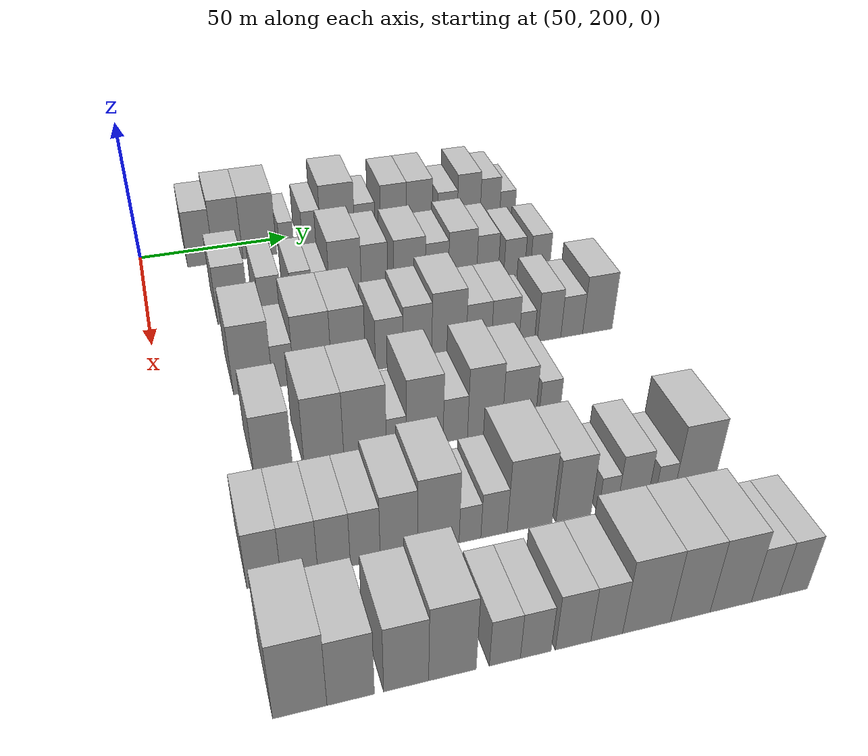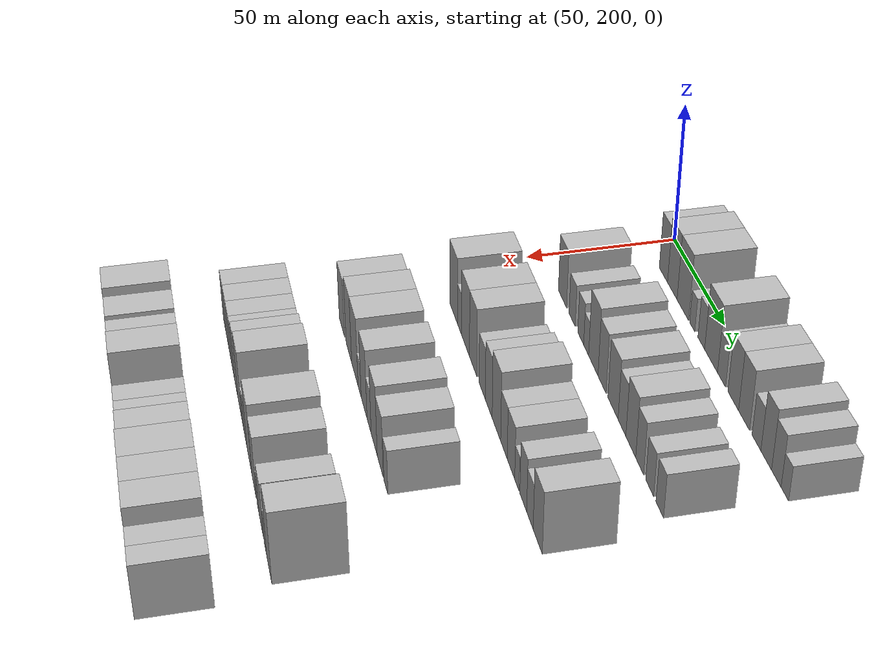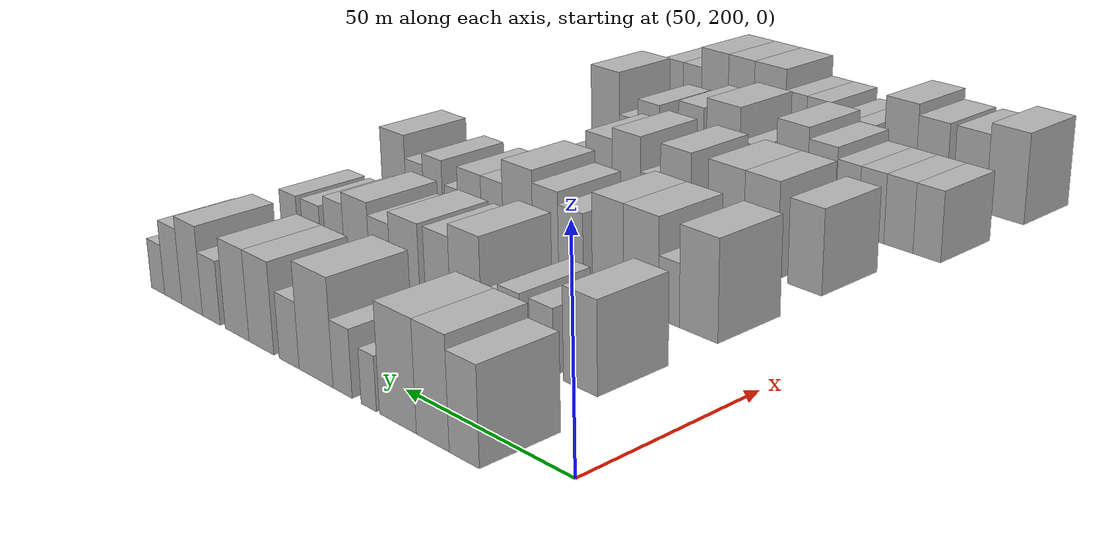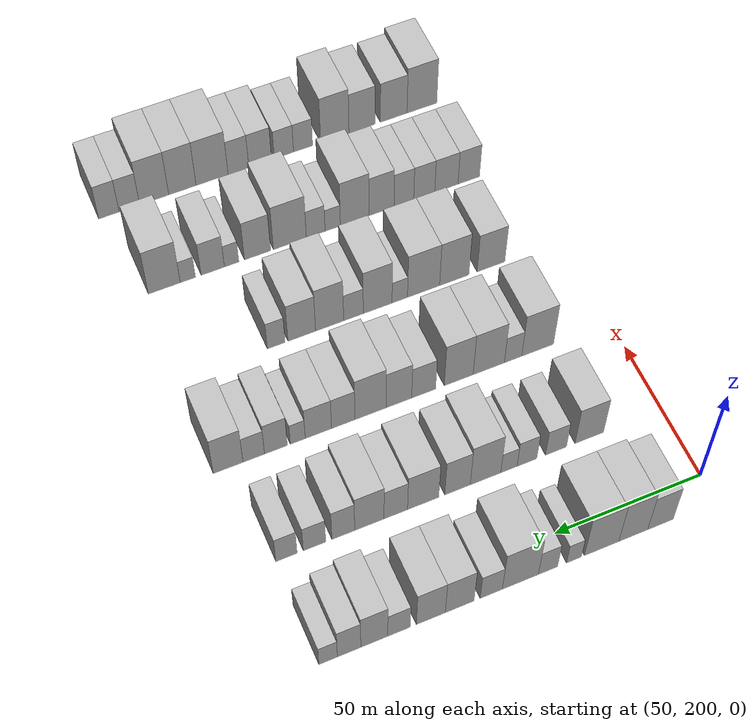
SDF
<sdf version="1.6">
 <world name="default">
  <model name="building_90">
   <static>1</static>
   <pose>50.0000 219.2931 0 0.000000 0.000000 0.000000</pose>
   <link name="link">
    <pose>0 0 10.50 0 0 0</pose>
    <collision name="collision"><geometry><box><size>20.0000 8.7649 21.0000</size></box></geometry></collision>
    <visual name="visual">
     <cast_shadows>0</cast_shadows>
     <geometry><box><size>20.0000 8.7649 21.0000</size></box></geometry>
     <material>
      <script>
       <uri>model://HANNAS_wall/materials/scripts</uri>
       <uri>model://HANNAS_wall/materials/textures</uri>
       <name>vrc/HANNAS_wall</name>
      </script>
     </material>
    </visual>
   </link>
  </model>
  <model name="building_91">
   <static>1</static>
   <pose>50.0000 228.6174 0 0.000000 0.000000 0.000000</pose>
   <link name="link">
    <pose>0 0 12.00 0 0 0</pose>
    <collision name="collision"><geometry><box><size>20.0000 9.8837 24.0000</size></box></geometry></collision>
    <visual name="visual">
     <cast_shadows>0</cast_shadows>
     <geometry><box><size>20.0000 9.8837 24.0000</size></box></geometry>
     <material>
      <script>
       <uri>model://HANNAS_wall/materials/scripts</uri>
       <uri>model://HANNAS_wall/materials/textures</uri>
       <name>vrc/HANNAS_wall</name>
      </script>
     </material>
    </visual>
   </link>
  </model>
  <model name="building_92">
   <static>1</static>
   <pose>50.0000 239.3772 0 0.000000 0.000000 0.000000</pose>
   <link name="link">
    <pose>0 0 12.00 0 0 0</pose>
    <collision name="collision"><geometry><box><size>20.0000 11.6358 24.0000</size></box></geometry></collision>
    <visual name="visual">
     <cast_shadows>0</cast_shadows>
     <geometry><box><size>20.0000 11.6358 24.0000</size></box></geometry>
     <material>
      <script>
       <uri>model://HANNAS_wall/materials/scripts</uri>
       <uri>model://HANNAS_wall/materials/textures</uri>
       <name>vrc/HANNAS_wall</name>
      </script>
     </material>
    </visual>
   </link>
  </model>
  <model name="building_93">
   <static>1</static>
   <pose>50.0000 248.6963 0 0.000000 0.000000 0.000000</pose>
   <link name="link">
    <pose>0 0 6.00 0 0 0</pose>
    <collision name="collision"><geometry><box><size>20.0000 5.0024 12.0000</size></box></geometry></collision>
    <visual name="visual">
     <cast_shadows>0</cast_shadows>
     <geometry><box><size>20.0000 5.0024 12.0000</size></box></geometry>
     <material>
      <script>
       <uri>model://HANNAS_wall/materials/scripts</uri>
       <uri>model://HANNAS_wall/materials/textures</uri>
       <name>vrc/HANNAS_wall</name>
      </script>
     </material>
    </visual>
   </link>
  </model>
  <model name="building_94">
   <static>1</static>
   <pose>50.0000 257.4159 0 0.000000 0.000000 0.000000</pose>
   <link name="link">
    <pose>0 0 7.50 0 0 0</pose>
    <collision name="collision"><geometry><box><size>20.0000 6.4369 15.0000</size></box></geometry></collision>
    <visual name="visual">
     <cast_shadows>0</cast_shadows>
     <geometry><box><size>20.0000 6.4369 15.0000</size></box></geometry>
     <material>
      <script>
       <uri>model://HANNAS_wall/materials/scripts</uri>
       <uri>model://HANNAS_wall/materials/textures</uri>
       <name>vrc/HANNAS_wall</name>
      </script>
     </material>
    </visual>
   </link>
  </model>
  <model name="building_95">
   <static>1</static>
   <pose>50.0000 266.6008 0 0.000000 0.000000 0.000000</pose>
   <link name="link">
    <pose>0 0 12.00 0 0 0</pose>
    <collision name="collision"><geometry><box><size>20.0000 11.9327 24.0000</size></box></geometry></collision>
    <visual name="visual">
     <cast_shadows>0</cast_shadows>
     <geometry><box><size>20.0000 11.9327 24.0000</size></box></geometry>
     <material>
      <script>
       <uri>model://HANNAS_wall/materials/scripts</uri>
       <uri>model://HANNAS_wall/materials/textures</uri>
       <name>vrc/HANNAS_wall</name>
      </script>
     </material>
    </visual>
   </link>
  </model>
  <model name="building_96">
   <static>1</static>
   <pose>50.0000 276.2049 0 0.000000 0.000000 0.000000</pose>
   <link name="link">
    <pose>0 0 7.50 0 0 0</pose>
    <collision name="collision"><geometry><box><size>20.0000 7.2756 15.0000</size></box></geometry></collision>
    <visual name="visual">
     <cast_shadows>0</cast_shadows>
     <geometry><box><size>20.0000 7.2756 15.0000</size></box></geometry>
     <material>
      <script>
       <uri>model://HANNAS_wall/materials/scripts</uri>
       <uri>model://HANNAS_wall/materials/textures</uri>
       <name>vrc/HANNAS_wall</name>
      </script>
     </material>
    </visual>
   </link>
  </model>
  <model name="building_97">
   <static>1</static>
   <pose>50.0000 286.5255 0 0.000000 0.000000 0.000000</pose>
   <link name="link">
    <pose>0 0 10.50 0 0 0</pose>
    <collision name="collision"><geometry><box><size>20.0000 9.3657 21.0000</size></box></geometry></collision>
    <visual name="visual">
     <cast_shadows>0</cast_shadows>
     <geometry><box><size>20.0000 9.3657 21.0000</size></box></geometry>
     <material>
      <script>
       <uri>model://HANNAS_wall/materials/scripts</uri>
       <uri>model://HANNAS_wall/materials/textures</uri>
       <name>vrc/HANNAS_wall</name>
      </script>
     </material>
    </visual>
   </link>
  </model>
  <model name="building_98">
   <static>1</static>
   <pose>50.0000 295.8890 0 0.000000 0.000000 0.000000</pose>
   <link name="link">
    <pose>0 0 10.50 0 0 0</pose>
    <collision name="collision"><geometry><box><size>20.0000 9.3614 21.0000</size></box></geometry></collision>
    <visual name="visual">
     <cast_shadows>0</cast_shadows>
     <geometry><box><size>20.0000 9.3614 21.0000</size></box></geometry>
     <material>
      <script>
       <uri>model://HANNAS_wall/materials/scripts</uri>
       <uri>model://HANNAS_wall/materials/textures</uri>
       <name>vrc/HANNAS_wall</name>
      </script>
     </material>
    </visual>
   </link>
  </model>
  <model name="building_99">
   <static>1</static>
   <pose>50.0000 306.1776 0 0.000000 0.000000 0.000000</pose>
   <link name="link">
    <pose>0 0 7.50 0 0 0</pose>
    <collision name="collision"><geometry><box><size>20.0000 7.2157 15.0000</size></box></geometry></collision>
    <visual name="visual">
     <cast_shadows>0</cast_shadows>
     <geometry><box><size>20.0000 7.2157 15.0000</size></box></geometry>
     <material>
      <script>
       <uri>model://HANNAS_wall/materials/scripts</uri>
       <uri>model://HANNAS_wall/materials/textures</uri>
       <name>vrc/HANNAS_wall</name>
      </script>
     </material>
    </visual>
   </link>
  </model>
  <model name="building_100">
   <static>1</static>
   <pose>50.0000 314.0619 0 0.000000 0.000000 0.000000</pose>
   <link name="link">
    <pose>0 0 10.50 0 0 0</pose>
    <collision name="collision"><geometry><box><size>20.0000 8.5529 21.0000</size></box></geometry></collision>
    <visual name="visual">
     <cast_shadows>0</cast_shadows>
     <geometry><box><size>20.0000 8.5529 21.0000</size></box></geometry>
     <material>
      <script>
       <uri>model://HANNAS_wall/materials/scripts</uri>
       <uri>model://HANNAS_wall/materials/textures</uri>
       <name>vrc/HANNAS_wall</name>
      </script>
     </material>
    </visual>
   </link>
  </model>
  <model name="building_101">
   <static>1</static>
   <pose>50.0000 322.0440 0 0.000000 0.000000 0.000000</pose>
   <link name="link">
    <pose>0 0 9.00 0 0 0</pose>
    <collision name="collision"><geometry><box><size>20.0000 7.4112 18.0000</size></box></geometry></collision>
    <visual name="visual">
     <cast_shadows>0</cast_shadows>
     <geometry><box><size>20.0000 7.4112 18.0000</size></box></geometry>
     <material>
      <script>
       <uri>model://HANNAS_wall/materials/scripts</uri>
       <uri>model://HANNAS_wall/materials/textures</uri>
       <name>vrc/HANNAS_wall</name>
      </script>
     </material>
    </visual>
   </link>
  </model>
  <model name="building_102">
   <static>1</static>
   <pose>50.0000 328.6626 0 0.000000 0.000000 0.000000</pose>
   <link name="link">
    <pose>0 0 6.00 0 0 0</pose>
    <collision name="collision"><geometry><box><size>20.0000 5.8260 12.0000</size></box></geometry></collision>
    <visual name="visual">
     <cast_shadows>0</cast_shadows>
     <geometry><box><size>20.0000 5.8260 12.0000</size></box></geometry>
     <material>
      <script>
       <uri>model://HANNAS_wall/materials/scripts</uri>
       <uri>model://HANNAS_wall/materials/textures</uri>
       <name>vrc/HANNAS_wall</name>
      </script>
     </material>
    </visual>
   </link>
  </model>
  <model name="building_214">
   <static>1</static>
   <pose>85.0000 225.6694 0 0.000000 0.000000 0.000000</pose>
   <link name="link">
    <pose>0 0 10.50 0 0 0</pose>
    <collision name="collision"><geometry><box><size>20.0000 9.9937 21.0000</size></box></geometry></collision>
    <visual name="visual">
     <cast_shadows>0</cast_shadows>
     <geometry><box><size>20.0000 9.9937 21.0000</size></box></geometry>
     <material>
      <script>
       <uri>model://HANNAS_wall/materials/scripts</uri>
       <uri>model://HANNAS_wall/materials/textures</uri>
       <name>vrc/HANNAS_wall</name>
      </script>
     </material>
    </visual>
   </link>
  </model>
  <model name="building_215">
   <static>1</static>
   <pose>85.0000 237.2993 0 0.000000 0.000000 0.000000</pose>
   <link name="link">
    <pose>0 0 7.50 0 0 0</pose>
    <collision name="collision"><geometry><box><size>20.0000 7.2660 15.0000</size></box></geometry></collision>
    <visual name="visual">
     <cast_shadows>0</cast_shadows>
     <geometry><box><size>20.0000 7.2660 15.0000</size></box></geometry>
     <material>
      <script>
       <uri>model://HANNAS_wall/materials/scripts</uri>
       <uri>model://HANNAS_wall/materials/textures</uri>
       <name>vrc/HANNAS_wall</name>
      </script>
     </material>
    </visual>
   </link>
  </model>
  <model name="building_216">
   <static>1</static>
   <pose>85.0000 247.3315 0 0.000000 0.000000 0.000000</pose>
   <link name="link">
    <pose>0 0 7.50 0 0 0</pose>
    <collision name="collision"><geometry><box><size>20.0000 6.7985 15.0000</size></box></geometry></collision>
    <visual name="visual">
     <cast_shadows>0</cast_shadows>
     <geometry><box><size>20.0000 6.7985 15.0000</size></box></geometry>
     <material>
      <script>
       <uri>model://HANNAS_wall/materials/scripts</uri>
       <uri>model://HANNAS_wall/materials/textures</uri>
       <name>vrc/HANNAS_wall</name>
      </script>
     </material>
    </visual>
   </link>
  </model>
  <model name="building_217">
   <static>1</static>
   <pose>85.0000 253.5375 0 0.000000 0.000000 0.000000</pose>
   <link name="link">
    <pose>0 0 6.00 0 0 0</pose>
    <collision name="collision"><geometry><box><size>20.0000 5.6137 12.0000</size></box></geometry></collision>
    <visual name="visual">
     <cast_shadows>0</cast_shadows>
     <geometry><box><size>20.0000 5.6137 12.0000</size></box></geometry>
     <material>
      <script>
       <uri>model://HANNAS_wall/materials/scripts</uri>
       <uri>model://HANNAS_wall/materials/textures</uri>
       <name>vrc/HANNAS_wall</name>
      </script>
     </material>
    </visual>
   </link>
  </model>
  <model name="building_218">
   <static>1</static>
   <pose>85.0000 261.5443 0 0.000000 0.000000 0.000000</pose>
   <link name="link">
    <pose>0 0 12.00 0 0 0</pose>
    <collision name="collision"><geometry><box><size>20.0000 10.3999 24.0000</size></box></geometry></collision>
    <visual name="visual">
     <cast_shadows>0</cast_shadows>
     <geometry><box><size>20.0000 10.3999 24.0000</size></box></geometry>
     <material>
      <script>
       <uri>model://HANNAS_wall/materials/scripts</uri>
       <uri>model://HANNAS_wall/materials/textures</uri>
       <name>vrc/HANNAS_wall</name>
      </script>
     </material>
    </visual>
   </link>
  </model>
  <model name="building_219">
   <static>1</static>
   <pose>85.0000 271.0660 0 0.000000 0.000000 0.000000</pose>
   <link name="link">
    <pose>0 0 10.50 0 0 0</pose>
    <collision name="collision"><geometry><box><size>20.0000 8.6435 21.0000</size></box></geometry></collision>
    <visual name="visual">
     <cast_shadows>0</cast_shadows>
     <geometry><box><size>20.0000 8.6435 21.0000</size></box></geometry>
     <material>
      <script>
       <uri>model://HANNAS_wall/materials/scripts</uri>
       <uri>model://HANNAS_wall/materials/textures</uri>
       <name>vrc/HANNAS_wall</name>
      </script>
     </material>
    </visual>
   </link>
  </model>
  <model name="building_220">
   <static>1</static>
   <pose>85.0000 282.6341 0 0.000000 0.000000 0.000000</pose>
   <link name="link">
    <pose>0 0 10.50 0 0 0</pose>
    <collision name="collision"><geometry><box><size>20.0000 10.4928 21.0000</size></box></geometry></collision>
    <visual name="visual">
     <cast_shadows>0</cast_shadows>
     <geometry><box><size>20.0000 10.4928 21.0000</size></box></geometry>
     <material>
      <script>
       <uri>model://HANNAS_wall/materials/scripts</uri>
       <uri>model://HANNAS_wall/materials/textures</uri>
       <name>vrc/HANNAS_wall</name>
      </script>
     </material>
    </visual>
   </link>
  </model>
  <model name="building_221">
   <static>1</static>
   <pose>85.0000 291.7943 0 0.000000 0.000000 0.000000</pose>
   <link name="link">
    <pose>0 0 9.00 0 0 0</pose>
    <collision name="collision"><geometry><box><size>20.0000 7.8276 18.0000</size></box></geometry></collision>
    <visual name="visual">
     <cast_shadows>0</cast_shadows>
     <geometry><box><size>20.0000 7.8276 18.0000</size></box></geometry>
     <material>
      <script>
       <uri>model://HANNAS_wall/materials/scripts</uri>
       <uri>model://HANNAS_wall/materials/textures</uri>
       <name>vrc/HANNAS_wall</name>
      </script>
     </material>
    </visual>
   </link>
  </model>
  <model name="building_222">
   <static>1</static>
   <pose>85.0000 300.5497 0 0.000000 0.000000 0.000000</pose>
   <link name="link">
    <pose>0 0 10.50 0 0 0</pose>
    <collision name="collision"><geometry><box><size>20.0000 9.6831 21.0000</size></box></geometry></collision>
    <visual name="visual">
     <cast_shadows>0</cast_shadows>
     <geometry><box><size>20.0000 9.6831 21.0000</size></box></geometry>
     <material>
      <script>
       <uri>model://HANNAS_wall/materials/scripts</uri>
       <uri>model://HANNAS_wall/materials/textures</uri>
       <name>vrc/HANNAS_wall</name>
      </script>
     </material>
    </visual>
   </link>
  </model>
  <model name="building_223">
   <static>1</static>
   <pose>85.0000 309.1389 0 0.000000 0.000000 0.000000</pose>
   <link name="link">
    <pose>0 0 9.00 0 0 0</pose>
    <collision name="collision"><geometry><box><size>20.0000 7.4954 18.0000</size></box></geometry></collision>
    <visual name="visual">
     <cast_shadows>0</cast_shadows>
     <geometry><box><size>20.0000 7.4954 18.0000</size></box></geometry>
     <material>
      <script>
       <uri>model://HANNAS_wall/materials/scripts</uri>
       <uri>model://HANNAS_wall/materials/textures</uri>
       <name>vrc/HANNAS_wall</name>
      </script>
     </material>
    </visual>
   </link>
  </model>
  <model name="building_224">
   <static>1</static>
   <pose>85.0000 318.5538 0 0.000000 0.000000 0.000000</pose>
   <link name="link">
    <pose>0 0 7.50 0 0 0</pose>
    <collision name="collision"><geometry><box><size>20.0000 7.3344 15.0000</size></box></geometry></collision>
    <visual name="visual">
     <cast_shadows>0</cast_shadows>
     <geometry><box><size>20.0000 7.3344 15.0000</size></box></geometry>
     <material>
      <script>
       <uri>model://HANNAS_wall/materials/scripts</uri>
       <uri>model://HANNAS_wall/materials/textures</uri>
       <name>vrc/HANNAS_wall</name>
      </script>
     </material>
    </visual>
   </link>
  </model>
  <model name="building_225">
   <static>1</static>
   <pose>85.0000 327.6606 0 0.000000 0.000000 0.000000</pose>
   <link name="link">
    <pose>0 0 7.50 0 0 0</pose>
    <collision name="collision"><geometry><box><size>20.0000 6.8792 15.0000</size></box></geometry></collision>
    <visual name="visual">
     <cast_shadows>0</cast_shadows>
     <geometry><box><size>20.0000 6.8792 15.0000</size></box></geometry>
     <material>
      <script>
       <uri>model://HANNAS_wall/materials/scripts</uri>
       <uri>model://HANNAS_wall/materials/textures</uri>
       <name>vrc/HANNAS_wall</name>
      </script>
     </material>
    </visual>
   </link>
  </model>
  <model name="building_324">
   <static>1</static>
   <pose>120.0000 226.4345 0 0.000000 0.000000 0.000000</pose>
   <link name="link">
    <pose>0 0 12.00 0 0 0</pose>
    <collision name="collision"><geometry><box><size>20.0000 11.3651 24.0000</size></box></geometry></collision>
    <visual name="visual">
     <cast_shadows>0</cast_shadows>
     <geometry><box><size>20.0000 11.3651 24.0000</size></box></geometry>
     <material>
      <script>
       <uri>model://HANNAS_wall/materials/scripts</uri>
       <uri>model://HANNAS_wall/materials/textures</uri>
       <name>vrc/HANNAS_wall</name>
      </script>
     </material>
    </visual>
   </link>
  </model>
  <model name="building_325">
   <static>1</static>
   <pose>120.0000 235.2301 0 0.000000 0.000000 0.000000</pose>
   <link name="link">
    <pose>0 0 7.50 0 0 0</pose>
    <collision name="collision"><geometry><box><size>20.0000 6.2260 15.0000</size></box></geometry></collision>
    <visual name="visual">
     <cast_shadows>0</cast_shadows>
     <geometry><box><size>20.0000 6.2260 15.0000</size></box></geometry>
     <material>
      <script>
       <uri>model://HANNAS_wall/materials/scripts</uri>
       <uri>model://HANNAS_wall/materials/textures</uri>
       <name>vrc/HANNAS_wall</name>
      </script>
     </material>
    </visual>
   </link>
  </model>
  <model name="building_326">
   <static>1</static>
   <pose>120.0000 243.8750 0 0.000000 0.000000 0.000000</pose>
   <link name="link">
    <pose>0 0 12.00 0 0 0</pose>
    <collision name="collision"><geometry><box><size>20.0000 11.0638 24.0000</size></box></geometry></collision>
    <visual name="visual">
     <cast_shadows>0</cast_shadows>
     <geometry><box><size>20.0000 11.0638 24.0000</size></box></geometry>
     <material>
      <script>
       <uri>model://HANNAS_wall/materials/scripts</uri>
       <uri>model://HANNAS_wall/materials/textures</uri>
       <name>vrc/HANNAS_wall</name>
      </script>
     </material>
    </visual>
   </link>
  </model>
  <model name="building_327">
   <static>1</static>
   <pose>120.0000 254.4738 0 0.000000 0.000000 0.000000</pose>
   <link name="link">
    <pose>0 0 12.00 0 0 0</pose>
    <collision name="collision"><geometry><box><size>20.0000 10.1339 24.0000</size></box></geometry></collision>
    <visual name="visual">
     <cast_shadows>0</cast_shadows>
     <geometry><box><size>20.0000 10.1339 24.0000</size></box></geometry>
     <material>
      <script>
       <uri>model://HANNAS_wall/materials/scripts</uri>
       <uri>model://HANNAS_wall/materials/textures</uri>
       <name>vrc/HANNAS_wall</name>
      </script>
     </material>
    </visual>
   </link>
  </model>
  <model name="building_328">
   <static>1</static>
   <pose>120.0000 266.7231 0 0.000000 0.000000 0.000000</pose>
   <link name="link">
    <pose>0 0 9.00 0 0 0</pose>
    <collision name="collision"><geometry><box><size>20.0000 8.3647 18.0000</size></box></geometry></collision>
    <visual name="visual">
     <cast_shadows>0</cast_shadows>
     <geometry><box><size>20.0000 8.3647 18.0000</size></box></geometry>
     <material>
      <script>
       <uri>model://HANNAS_wall/materials/scripts</uri>
       <uri>model://HANNAS_wall/materials/textures</uri>
       <name>vrc/HANNAS_wall</name>
      </script>
     </material>
    </visual>
   </link>
  </model>
  <model name="building_329">
   <static>1</static>
   <pose>120.0000 275.3216 0 0.000000 0.000000 0.000000</pose>
   <link name="link">
    <pose>0 0 10.50 0 0 0</pose>
    <collision name="collision"><geometry><box><size>20.0000 8.8323 21.0000</size></box></geometry></collision>
    <visual name="visual">
     <cast_shadows>0</cast_shadows>
     <geometry><box><size>20.0000 8.8323 21.0000</size></box></geometry>
     <material>
      <script>
       <uri>model://HANNAS_wall/materials/scripts</uri>
       <uri>model://HANNAS_wall/materials/textures</uri>
       <name>vrc/HANNAS_wall</name>
      </script>
     </material>
    </visual>
   </link>
  </model>
  <model name="building_330">
   <static>1</static>
   <pose>120.0000 285.0841 0 0.000000 0.000000 0.000000</pose>
   <link name="link">
    <pose>0 0 12.00 0 0 0</pose>
    <collision name="collision"><geometry><box><size>20.0000 10.6927 24.0000</size></box></geometry></collision>
    <visual name="visual">
     <cast_shadows>0</cast_shadows>
     <geometry><box><size>20.0000 10.6927 24.0000</size></box></geometry>
     <material>
      <script>
       <uri>model://HANNAS_wall/materials/scripts</uri>
       <uri>model://HANNAS_wall/materials/textures</uri>
       <name>vrc/HANNAS_wall</name>
      </script>
     </material>
    </visual>
   </link>
  </model>
  <model name="building_331">
   <static>1</static>
   <pose>120.0000 294.4161 0 0.000000 0.000000 0.000000</pose>
   <link name="link">
    <pose>0 0 9.00 0 0 0</pose>
    <collision name="collision"><geometry><box><size>20.0000 7.9714 18.0000</size></box></geometry></collision>
    <visual name="visual">
     <cast_shadows>0</cast_shadows>
     <geometry><box><size>20.0000 7.9714 18.0000</size></box></geometry>
     <material>
      <script>
       <uri>model://HANNAS_wall/materials/scripts</uri>
       <uri>model://HANNAS_wall/materials/textures</uri>
       <name>vrc/HANNAS_wall</name>
      </script>
     </material>
    </visual>
   </link>
  </model>
  <model name="building_332">
   <static>1</static>
   <pose>120.0000 302.8595 0 0.000000 0.000000 0.000000</pose>
   <link name="link">
    <pose>0 0 9.00 0 0 0</pose>
    <collision name="collision"><geometry><box><size>20.0000 8.9153 18.0000</size></box></geometry></collision>
    <visual name="visual">
     <cast_shadows>0</cast_shadows>
     <geometry><box><size>20.0000 8.9153 18.0000</size></box></geometry>
     <material>
      <script>
       <uri>model://HANNAS_wall/materials/scripts</uri>
       <uri>model://HANNAS_wall/materials/textures</uri>
       <name>vrc/HANNAS_wall</name>
      </script>
     </material>
    </visual>
   </link>
  </model>
  <model name="building_333">
   <static>1</static>
   <pose>120.0000 309.8301 0 0.000000 0.000000 0.000000</pose>
   <link name="link">
    <pose>0 0 6.00 0 0 0</pose>
    <collision name="collision"><geometry><box><size>20.0000 5.0261 12.0000</size></box></geometry></collision>
    <visual name="visual">
     <cast_shadows>0</cast_shadows>
     <geometry><box><size>20.0000 5.0261 12.0000</size></box></geometry>
     <material>
      <script>
       <uri>model://HANNAS_wall/materials/scripts</uri>
       <uri>model://HANNAS_wall/materials/textures</uri>
       <name>vrc/HANNAS_wall</name>
      </script>
     </material>
    </visual>
   </link>
  </model>
  <model name="building_334">
   <static>1</static>
   <pose>120.0000 317.1547 0 0.000000 0.000000 0.000000</pose>
   <link name="link">
    <pose>0 0 9.00 0 0 0</pose>
    <collision name="collision"><geometry><box><size>20.0000 7.6230 18.0000</size></box></geometry></collision>
    <visual name="visual">
     <cast_shadows>0</cast_shadows>
     <geometry><box><size>20.0000 7.6230 18.0000</size></box></geometry>
     <material>
      <script>
       <uri>model://HANNAS_wall/materials/scripts</uri>
       <uri>model://HANNAS_wall/materials/textures</uri>
       <name>vrc/HANNAS_wall</name>
      </script>
     </material>
    </visual>
   </link>
  </model>
  <model name="building_335">
   <static>1</static>
   <pose>120.0000 324.5552 0 0.000000 0.000000 0.000000</pose>
   <link name="link">
    <pose>0 0 7.50 0 0 0</pose>
    <collision name="collision"><geometry><box><size>20.0000 7.1780 15.0000</size></box></geometry></collision>
    <visual name="visual">
     <cast_shadows>0</cast_shadows>
     <geometry><box><size>20.0000 7.1780 15.0000</size></box></geometry>
     <material>
      <script>
       <uri>model://HANNAS_wall/materials/scripts</uri>
       <uri>model://HANNAS_wall/materials/textures</uri>
       <name>vrc/HANNAS_wall</name>
      </script>
     </material>
    </visual>
   </link>
  </model>
  <model name="building_336">
   <static>1</static>
   <pose>120.0000 333.0835 0 0.000000 0.000000 0.000000</pose>
   <link name="link">
    <pose>0 0 10.50 0 0 0</pose>
    <collision name="collision"><geometry><box><size>20.0000 9.8786 21.0000</size></box></geometry></collision>
    <visual name="visual">
     <cast_shadows>0</cast_shadows>
     <geometry><box><size>20.0000 9.8786 21.0000</size></box></geometry>
     <material>
      <script>
       <uri>model://HANNAS_wall/materials/scripts</uri>
       <uri>model://HANNAS_wall/materials/textures</uri>
       <name>vrc/HANNAS_wall</name>
      </script>
     </material>
    </visual>
   </link>
  </model>
  <model name="building_455">
   <static>1</static>
   <pose>155.0000 226.4869 0 0.000000 0.000000 0.000000</pose>
   <link name="link">
    <pose>0 0 10.50 0 0 0</pose>
    <collision name="collision"><geometry><box><size>20.0000 10.1524 21.0000</size></box></geometry></collision>
    <visual name="visual">
     <cast_shadows>0</cast_shadows>
     <geometry><box><size>20.0000 10.1524 21.0000</size></box></geometry>
     <material>
      <script>
       <uri>model://HANNAS_wall/materials/scripts</uri>
       <uri>model://HANNAS_wall/materials/textures</uri>
       <name>vrc/HANNAS_wall</name>
      </script>
     </material>
    </visual>
   </link>
  </model>
  <model name="building_456">
   <static>1</static>
   <pose>155.0000 239.8889 0 0.000000 0.000000 0.000000</pose>
   <link name="link">
    <pose>0 0 12.00 0 0 0</pose>
    <collision name="collision"><geometry><box><size>20.0000 10.6514 24.0000</size></box></geometry></collision>
    <visual name="visual">
     <cast_shadows>0</cast_shadows>
     <geometry><box><size>20.0000 10.6514 24.0000</size></box></geometry>
     <material>
      <script>
       <uri>model://HANNAS_wall/materials/scripts</uri>
       <uri>model://HANNAS_wall/materials/textures</uri>
       <name>vrc/HANNAS_wall</name>
      </script>
     </material>
    </visual>
   </link>
  </model>
  <model name="building_457">
   <static>1</static>
   <pose>155.0000 251.0143 0 0.000000 0.000000 0.000000</pose>
   <link name="link">
    <pose>0 0 12.00 0 0 0</pose>
    <collision name="collision"><geometry><box><size>20.0000 11.5995 24.0000</size></box></geometry></collision>
    <visual name="visual">
     <cast_shadows>0</cast_shadows>
     <geometry><box><size>20.0000 11.5995 24.0000</size></box></geometry>
     <material>
      <script>
       <uri>model://HANNAS_wall/materials/scripts</uri>
       <uri>model://HANNAS_wall/materials/textures</uri>
       <name>vrc/HANNAS_wall</name>
      </script>
     </material>
    </visual>
   </link>
  </model>
  <model name="building_458">
   <static>1</static>
   <pose>155.0000 259.5809 0 0.000000 0.000000 0.000000</pose>
   <link name="link">
    <pose>0 0 6.00 0 0 0</pose>
    <collision name="collision"><geometry><box><size>20.0000 5.5337 12.0000</size></box></geometry></collision>
    <visual name="visual">
     <cast_shadows>0</cast_shadows>
     <geometry><box><size>20.0000 5.5337 12.0000</size></box></geometry>
     <material>
      <script>
       <uri>model://HANNAS_wall/materials/scripts</uri>
       <uri>model://HANNAS_wall/materials/textures</uri>
       <name>vrc/HANNAS_wall</name>
      </script>
     </material>
    </visual>
   </link>
  </model>
  <model name="building_459">
   <static>1</static>
   <pose>155.0000 267.4757 0 0.000000 0.000000 0.000000</pose>
   <link name="link">
    <pose>0 0 12.00 0 0 0</pose>
    <collision name="collision"><geometry><box><size>20.0000 10.2559 24.0000</size></box></geometry></collision>
    <visual name="visual">
     <cast_shadows>0</cast_shadows>
     <geometry><box><size>20.0000 10.2559 24.0000</size></box></geometry>
     <material>
      <script>
       <uri>model://HANNAS_wall/materials/scripts</uri>
       <uri>model://HANNAS_wall/materials/textures</uri>
       <name>vrc/HANNAS_wall</name>
      </script>
     </material>
    </visual>
   </link>
  </model>
  <model name="building_460">
   <static>1</static>
   <pose>155.0000 276.0703 0 0.000000 0.000000 0.000000</pose>
   <link name="link">
    <pose>0 0 7.50 0 0 0</pose>
    <collision name="collision"><geometry><box><size>20.0000 6.9334 15.0000</size></box></geometry></collision>
    <visual name="visual">
     <cast_shadows>0</cast_shadows>
     <geometry><box><size>20.0000 6.9334 15.0000</size></box></geometry>
     <material>
      <script>
       <uri>model://HANNAS_wall/materials/scripts</uri>
       <uri>model://HANNAS_wall/materials/textures</uri>
       <name>vrc/HANNAS_wall</name>
      </script>
     </material>
    </visual>
   </link>
  </model>
  <model name="building_461">
   <static>1</static>
   <pose>155.0000 284.4874 0 0.000000 0.000000 0.000000</pose>
   <link name="link">
    <pose>0 0 12.00 0 0 0</pose>
    <collision name="collision"><geometry><box><size>20.0000 9.9008 24.0000</size></box></geometry></collision>
    <visual name="visual">
     <cast_shadows>0</cast_shadows>
     <geometry><box><size>20.0000 9.9008 24.0000</size></box></geometry>
     <material>
      <script>
       <uri>model://HANNAS_wall/materials/scripts</uri>
       <uri>model://HANNAS_wall/materials/textures</uri>
       <name>vrc/HANNAS_wall</name>
      </script>
     </material>
    </visual>
   </link>
  </model>
  <model name="building_462">
   <static>1</static>
   <pose>155.0000 294.2658 0 0.000000 0.000000 0.000000</pose>
   <link name="link">
    <pose>0 0 10.50 0 0 0</pose>
    <collision name="collision"><geometry><box><size>20.0000 9.6559 21.0000</size></box></geometry></collision>
    <visual name="visual">
     <cast_shadows>0</cast_shadows>
     <geometry><box><size>20.0000 9.6559 21.0000</size></box></geometry>
     <material>
      <script>
       <uri>model://HANNAS_wall/materials/scripts</uri>
       <uri>model://HANNAS_wall/materials/textures</uri>
       <name>vrc/HANNAS_wall</name>
      </script>
     </material>
    </visual>
   </link>
  </model>
  <model name="building_463">
   <static>1</static>
   <pose>155.0000 303.1693 0 0.000000 0.000000 0.000000</pose>
   <link name="link">
    <pose>0 0 7.50 0 0 0</pose>
    <collision name="collision"><geometry><box><size>20.0000 6.1513 15.0000</size></box></geometry></collision>
    <visual name="visual">
     <cast_shadows>0</cast_shadows>
     <geometry><box><size>20.0000 6.1513 15.0000</size></box></geometry>
     <material>
      <script>
       <uri>model://HANNAS_wall/materials/scripts</uri>
       <uri>model://HANNAS_wall/materials/textures</uri>
       <name>vrc/HANNAS_wall</name>
      </script>
     </material>
    </visual>
   </link>
  </model>
  <model name="building_569">
   <static>1</static>
   <pose>190.0000 218.2999 0 0.000000 0.000000 0.000000</pose>
   <link name="link">
    <pose>0 0 9.00 0 0 0</pose>
    <collision name="collision"><geometry><box><size>20.0000 8.0896 18.0000</size></box></geometry></collision>
    <visual name="visual">
     <cast_shadows>0</cast_shadows>
     <geometry><box><size>20.0000 8.0896 18.0000</size></box></geometry>
     <material>
      <script>
       <uri>model://HANNAS_wall/materials/scripts</uri>
       <uri>model://HANNAS_wall/materials/textures</uri>
       <name>vrc/HANNAS_wall</name>
      </script>
     </material>
    </visual>
   </link>
  </model>
  <model name="building_570">
   <static>1</static>
   <pose>190.0000 226.7125 0 0.000000 0.000000 0.000000</pose>
   <link name="link">
    <pose>0 0 9.00 0 0 0</pose>
    <collision name="collision"><geometry><box><size>20.0000 8.7356 18.0000</size></box></geometry></collision>
    <visual name="visual">
     <cast_shadows>0</cast_shadows>
     <geometry><box><size>20.0000 8.7356 18.0000</size></box></geometry>
     <material>
      <script>
       <uri>model://HANNAS_wall/materials/scripts</uri>
       <uri>model://HANNAS_wall/materials/textures</uri>
       <name>vrc/HANNAS_wall</name>
      </script>
     </material>
    </visual>
   </link>
  </model>
  <model name="building_571">
   <static>1</static>
   <pose>190.0000 235.0154 0 0.000000 0.000000 0.000000</pose>
   <link name="link">
    <pose>0 0 9.00 0 0 0</pose>
    <collision name="collision"><geometry><box><size>20.0000 7.8703 18.0000</size></box></geometry></collision>
    <visual name="visual">
     <cast_shadows>0</cast_shadows>
     <geometry><box><size>20.0000 7.8703 18.0000</size></box></geometry>
     <material>
      <script>
       <uri>model://HANNAS_wall/materials/scripts</uri>
       <uri>model://HANNAS_wall/materials/textures</uri>
       <name>vrc/HANNAS_wall</name>
      </script>
     </material>
    </visual>
   </link>
  </model>
  <model name="building_572">
   <static>1</static>
   <pose>190.0000 242.6029 0 0.000000 0.000000 0.000000</pose>
   <link name="link">
    <pose>0 0 9.00 0 0 0</pose>
    <collision name="collision"><geometry><box><size>20.0000 7.3047 18.0000</size></box></geometry></collision>
    <visual name="visual">
     <cast_shadows>0</cast_shadows>
     <geometry><box><size>20.0000 7.3047 18.0000</size></box></geometry>
     <material>
      <script>
       <uri>model://HANNAS_wall/materials/scripts</uri>
       <uri>model://HANNAS_wall/materials/textures</uri>
       <name>vrc/HANNAS_wall</name>
      </script>
     </material>
    </visual>
   </link>
  </model>
  <model name="building_573">
   <static>1</static>
   <pose>190.0000 250.8804 0 0.000000 0.000000 0.000000</pose>
   <link name="link">
    <pose>0 0 10.50 0 0 0</pose>
    <collision name="collision"><geometry><box><size>20.0000 9.2504 21.0000</size></box></geometry></collision>
    <visual name="visual">
     <cast_shadows>0</cast_shadows>
     <geometry><box><size>20.0000 9.2504 21.0000</size></box></geometry>
     <material>
      <script>
       <uri>model://HANNAS_wall/materials/scripts</uri>
       <uri>model://HANNAS_wall/materials/textures</uri>
       <name>vrc/HANNAS_wall</name>
      </script>
     </material>
    </visual>
   </link>
  </model>
  <model name="building_574">
   <static>1</static>
   <pose>190.0000 260.7575 0 0.000000 0.000000 0.000000</pose>
   <link name="link">
    <pose>0 0 12.00 0 0 0</pose>
    <collision name="collision"><geometry><box><size>20.0000 10.5037 24.0000</size></box></geometry></collision>
    <visual name="visual">
     <cast_shadows>0</cast_shadows>
     <geometry><box><size>20.0000 10.5037 24.0000</size></box></geometry>
     <material>
      <script>
       <uri>model://HANNAS_wall/materials/scripts</uri>
       <uri>model://HANNAS_wall/materials/textures</uri>
       <name>vrc/HANNAS_wall</name>
      </script>
     </material>
    </visual>
   </link>
  </model>
  <model name="building_575">
   <static>1</static>
   <pose>190.0000 268.8014 0 0.000000 0.000000 0.000000</pose>
   <link name="link">
    <pose>0 0 6.00 0 0 0</pose>
    <collision name="collision"><geometry><box><size>20.0000 5.5842 12.0000</size></box></geometry></collision>
    <visual name="visual">
     <cast_shadows>0</cast_shadows>
     <geometry><box><size>20.0000 5.5842 12.0000</size></box></geometry>
     <material>
      <script>
       <uri>model://HANNAS_wall/materials/scripts</uri>
       <uri>model://HANNAS_wall/materials/textures</uri>
       <name>vrc/HANNAS_wall</name>
      </script>
     </material>
    </visual>
   </link>
  </model>
  <model name="building_576">
   <static>1</static>
   <pose>190.0000 274.9888 0 0.000000 0.000000 0.000000</pose>
   <link name="link">
    <pose>0 0 7.50 0 0 0</pose>
    <collision name="collision"><geometry><box><size>20.0000 6.7907 15.0000</size></box></geometry></collision>
    <visual name="visual">
     <cast_shadows>0</cast_shadows>
     <geometry><box><size>20.0000 6.7907 15.0000</size></box></geometry>
     <material>
      <script>
       <uri>model://HANNAS_wall/materials/scripts</uri>
       <uri>model://HANNAS_wall/materials/textures</uri>
       <name>vrc/HANNAS_wall</name>
      </script>
     </material>
    </visual>
   </link>
  </model>
  <model name="building_577">
   <static>1</static>
   <pose>190.0000 284.3187 0 0.000000 0.000000 0.000000</pose>
   <link name="link">
    <pose>0 0 12.00 0 0 0</pose>
    <collision name="collision"><geometry><box><size>20.0000 11.8689 24.0000</size></box></geometry></collision>
    <visual name="visual">
     <cast_shadows>0</cast_shadows>
     <geometry><box><size>20.0000 11.8689 24.0000</size></box></geometry>
     <material>
      <script>
       <uri>model://HANNAS_wall/materials/scripts</uri>
       <uri>model://HANNAS_wall/materials/textures</uri>
       <name>vrc/HANNAS_wall</name>
      </script>
     </material>
    </visual>
   </link>
  </model>
  <model name="building_578">
   <static>1</static>
   <pose>190.0000 295.9322 0 0.000000 0.000000 0.000000</pose>
   <link name="link">
    <pose>0 0 10.50 0 0 0</pose>
    <collision name="collision"><geometry><box><size>20.0000 9.3581 21.0000</size></box></geometry></collision>
    <visual name="visual">
     <cast_shadows>0</cast_shadows>
     <geometry><box><size>20.0000 9.3581 21.0000</size></box></geometry>
     <material>
      <script>
       <uri>model://HANNAS_wall/materials/scripts</uri>
       <uri>model://HANNAS_wall/materials/textures</uri>
       <name>vrc/HANNAS_wall</name>
      </script>
     </material>
    </visual>
   </link>
  </model>
  <model name="building_579">
   <static>1</static>
   <pose>190.0000 305.1638 0 0.000000 0.000000 0.000000</pose>
   <link name="link">
    <pose>0 0 6.00 0 0 0</pose>
    <collision name="collision"><geometry><box><size>20.0000 5.1051 12.0000</size></box></geometry></collision>
    <visual name="visual">
     <cast_shadows>0</cast_shadows>
     <geometry><box><size>20.0000 5.1051 12.0000</size></box></geometry>
     <material>
      <script>
       <uri>model://HANNAS_wall/materials/scripts</uri>
       <uri>model://HANNAS_wall/materials/textures</uri>
       <name>vrc/HANNAS_wall</name>
      </script>
     </material>
    </visual>
   </link>
  </model>
  <model name="building_580">
   <static>1</static>
   <pose>190.0000 311.8457 0 0.000000 0.000000 0.000000</pose>
   <link name="link">
    <pose>0 0 9.00 0 0 0</pose>
    <collision name="collision"><geometry><box><size>20.0000 8.2586 18.0000</size></box></geometry></collision>
    <visual name="visual">
     <cast_shadows>0</cast_shadows>
     <geometry><box><size>20.0000 8.2586 18.0000</size></box></geometry>
     <material>
      <script>
       <uri>model://HANNAS_wall/materials/scripts</uri>
       <uri>model://HANNAS_wall/materials/textures</uri>
       <name>vrc/HANNAS_wall</name>
      </script>
     </material>
    </visual>
   </link>
  </model>
  <model name="building_581">
   <static>1</static>
   <pose>190.0000 320.6396 0 0.000000 0.000000 0.000000</pose>
   <link name="link">
    <pose>0 0 6.00 0 0 0</pose>
    <collision name="collision"><geometry><box><size>20.0000 5.3292 12.0000</size></box></geometry></collision>
    <visual name="visual">
     <cast_shadows>0</cast_shadows>
     <geometry><box><size>20.0000 5.3292 12.0000</size></box></geometry>
     <material>
      <script>
       <uri>model://HANNAS_wall/materials/scripts</uri>
       <uri>model://HANNAS_wall/materials/textures</uri>
       <name>vrc/HANNAS_wall</name>
      </script>
     </material>
    </visual>
   </link>
  </model>
  <model name="building_582">
   <static>1</static>
   <pose>190.0000 328.8951 0 0.000000 0.000000 0.000000</pose>
   <link name="link">
    <pose>0 0 12.00 0 0 0</pose>
    <collision name="collision"><geometry><box><size>20.0000 11.1817 24.0000</size></box></geometry></collision>
    <visual name="visual">
     <cast_shadows>0</cast_shadows>
     <geometry><box><size>20.0000 11.1817 24.0000</size></box></geometry>
     <material>
      <script>
       <uri>model://HANNAS_wall/materials/scripts</uri>
       <uri>model://HANNAS_wall/materials/textures</uri>
       <name>vrc/HANNAS_wall</name>
      </script>
     </material>
    </visual>
   </link>
  </model>
  <model name="building_700">
   <static>1</static>
   <pose>225.0000 220.1778 0 0.000000 0.000000 0.000000</pose>
   <link name="link">
    <pose>0 0 12.00 0 0 0</pose>
    <collision name="collision"><geometry><box><size>20.0000 11.4781 24.0000</size></box></geometry></collision>
    <visual name="visual">
     <cast_shadows>0</cast_shadows>
     <geometry><box><size>20.0000 11.4781 24.0000</size></box></geometry>
     <material>
      <script>
       <uri>model://HANNAS_wall/materials/scripts</uri>
       <uri>model://HANNAS_wall/materials/textures</uri>
       <name>vrc/HANNAS_wall</name>
      </script>
     </material>
    </visual>
   </link>
  </model>
  <model name="building_701">
   <static>1</static>
   <pose>225.0000 231.0272 0 0.000000 0.000000 0.000000</pose>
   <link name="link">
    <pose>0 0 10.50 0 0 0</pose>
    <collision name="collision"><geometry><box><size>20.0000 10.2207 21.0000</size></box></geometry></collision>
    <visual name="visual">
     <cast_shadows>0</cast_shadows>
     <geometry><box><size>20.0000 10.2207 21.0000</size></box></geometry>
     <material>
      <script>
       <uri>model://HANNAS_wall/materials/scripts</uri>
       <uri>model://HANNAS_wall/materials/textures</uri>
       <name>vrc/HANNAS_wall</name>
      </script>
     </material>
    </visual>
   </link>
  </model>
  <model name="building_702">
   <static>1</static>
   <pose>225.0000 243.0932 0 0.000000 0.000000 0.000000</pose>
   <link name="link">
    <pose>0 0 10.50 0 0 0</pose>
    <collision name="collision"><geometry><box><size>20.0000 9.9114 21.0000</size></box></geometry></collision>
    <visual name="visual">
     <cast_shadows>0</cast_shadows>
     <geometry><box><size>20.0000 9.9114 21.0000</size></box></geometry>
     <material>
      <script>
       <uri>model://HANNAS_wall/materials/scripts</uri>
       <uri>model://HANNAS_wall/materials/textures</uri>
       <name>vrc/HANNAS_wall</name>
      </script>
     </material>
    </visual>
   </link>
  </model>
  <model name="building_703">
   <static>1</static>
   <pose>225.0000 253.4005 0 0.000000 0.000000 0.000000</pose>
   <link name="link">
    <pose>0 0 12.00 0 0 0</pose>
    <collision name="collision"><geometry><box><size>20.0000 10.7032 24.0000</size></box></geometry></collision>
    <visual name="visual">
     <cast_shadows>0</cast_shadows>
     <geometry><box><size>20.0000 10.7032 24.0000</size></box></geometry>
     <material>
      <script>
       <uri>model://HANNAS_wall/materials/scripts</uri>
       <uri>model://HANNAS_wall/materials/textures</uri>
       <name>vrc/HANNAS_wall</name>
      </script>
     </material>
    </visual>
   </link>
  </model>
  <model name="building_704">
   <static>1</static>
   <pose>225.0000 265.3157 0 0.000000 0.000000 0.000000</pose>
   <link name="link">
    <pose>0 0 7.50 0 0 0</pose>
    <collision name="collision"><geometry><box><size>20.0000 7.1273 15.0000</size></box></geometry></collision>
    <visual name="visual">
     <cast_shadows>0</cast_shadows>
     <geometry><box><size>20.0000 7.1273 15.0000</size></box></geometry>
     <material>
      <script>
       <uri>model://HANNAS_wall/materials/scripts</uri>
       <uri>model://HANNAS_wall/materials/textures</uri>
       <name>vrc/HANNAS_wall</name>
      </script>
     </material>
    </visual>
   </link>
  </model>
  <model name="building_705">
   <static>1</static>
   <pose>225.0000 272.4720 0 0.000000 0.000000 0.000000</pose>
   <link name="link">
    <pose>0 0 7.50 0 0 0</pose>
    <collision name="collision"><geometry><box><size>20.0000 7.1853 15.0000</size></box></geometry></collision>
    <visual name="visual">
     <cast_shadows>0</cast_shadows>
     <geometry><box><size>20.0000 7.1853 15.0000</size></box></geometry>
     <material>
      <script>
       <uri>model://HANNAS_wall/materials/scripts</uri>
       <uri>model://HANNAS_wall/materials/textures</uri>
       <name>vrc/HANNAS_wall</name>
      </script>
     </material>
    </visual>
   </link>
  </model>
  <model name="building_706">
   <static>1</static>
   <pose>225.0000 281.2700 0 0.000000 0.000000 0.000000</pose>
   <link name="link">
    <pose>0 0 9.00 0 0 0</pose>
    <collision name="collision"><geometry><box><size>20.0000 8.4105 18.0000</size></box></geometry></collision>
    <visual name="visual">
     <cast_shadows>0</cast_shadows>
     <geometry><box><size>20.0000 8.4105 18.0000</size></box></geometry>
     <material>
      <script>
       <uri>model://HANNAS_wall/materials/scripts</uri>
       <uri>model://HANNAS_wall/materials/textures</uri>
       <name>vrc/HANNAS_wall</name>
      </script>
     </material>
    </visual>
   </link>
  </model>
  <model name="building_707">
   <static>1</static>
   <pose>225.0000 289.2903 0 0.000000 0.000000 0.000000</pose>
   <link name="link">
    <pose>0 0 9.00 0 0 0</pose>
    <collision name="collision"><geometry><box><size>20.0000 7.6301 18.0000</size></box></geometry></collision>
    <visual name="visual">
     <cast_shadows>0</cast_shadows>
     <geometry><box><size>20.0000 7.6301 18.0000</size></box></geometry>
     <material>
      <script>
       <uri>model://HANNAS_wall/materials/scripts</uri>
       <uri>model://HANNAS_wall/materials/textures</uri>
       <name>vrc/HANNAS_wall</name>
      </script>
     </material>
    </visual>
   </link>
  </model>
  <model name="building_708">
   <static>1</static>
   <pose>225.0000 298.9507 0 0.000000 0.000000 0.000000</pose>
   <link name="link">
    <pose>0 0 12.00 0 0 0</pose>
    <collision name="collision"><geometry><box><size>20.0000 11.6907 24.0000</size></box></geometry></collision>
    <visual name="visual">
     <cast_shadows>0</cast_shadows>
     <geometry><box><size>20.0000 11.6907 24.0000</size></box></geometry>
     <material>
      <script>
       <uri>model://HANNAS_wall/materials/scripts</uri>
       <uri>model://HANNAS_wall/materials/textures</uri>
       <name>vrc/HANNAS_wall</name>
      </script>
     </material>
    </visual>
   </link>
  </model>
  <model name="building_709">
   <static>1</static>
   <pose>225.0000 309.7614 0 0.000000 0.000000 0.000000</pose>
   <link name="link">
    <pose>0 0 12.00 0 0 0</pose>
    <collision name="collision"><geometry><box><size>20.0000 9.9307 24.0000</size></box></geometry></collision>
    <visual name="visual">
     <cast_shadows>0</cast_shadows>
     <geometry><box><size>20.0000 9.9307 24.0000</size></box></geometry>
     <material>
      <script>
       <uri>model://HANNAS_wall/materials/scripts</uri>
       <uri>model://HANNAS_wall/materials/textures</uri>
       <name>vrc/HANNAS_wall</name>
      </script>
     </material>
    </visual>
   </link>
  </model>
  <model name="building_710">
   <static>1</static>
   <pose>225.0000 319.9754 0 0.000000 0.000000 0.000000</pose>
   <link name="link">
    <pose>0 0 12.00 0 0 0</pose>
    <collision name="collision"><geometry><box><size>20.0000 10.4972 24.0000</size></box></geometry></collision>
    <visual name="visual">
     <cast_shadows>0</cast_shadows>
     <geometry><box><size>20.0000 10.4972 24.0000</size></box></geometry>
     <material>
      <script>
       <uri>model://HANNAS_wall/materials/scripts</uri>
       <uri>model://HANNAS_wall/materials/textures</uri>
       <name>vrc/HANNAS_wall</name>
      </script>
     </material>
    </visual>
   </link>
  </model>
  <model name="building_711">
   <static>1</static>
   <pose>225.0000 328.8963 0 0.000000 0.000000 0.000000</pose>
   <link name="link">
    <pose>0 0 9.00 0 0 0</pose>
    <collision name="collision"><geometry><box><size>20.0000 7.3445 18.0000</size></box></geometry></collision>
    <visual name="visual">
     <cast_shadows>0</cast_shadows>
     <geometry><box><size>20.0000 7.3445 18.0000</size></box></geometry>
     <material>
      <script>
       <uri>model://HANNAS_wall/materials/scripts</uri>
       <uri>model://HANNAS_wall/materials/textures</uri>
       <name>vrc/HANNAS_wall</name>
      </script>
     </material>
    </visual>
   </link>
  </model>
  <model name="building_712">
   <static>1</static>
   <pose>225.0000 336.2066 0 0.000000 0.000000 0.000000</pose>
   <link name="link">
    <pose>0 0 9.00 0 0 0</pose>
    <collision name="collision"><geometry><box><size>20.0000 7.2763 18.0000</size></box></geometry></collision>
    <visual name="visual">
     <cast_shadows>0</cast_shadows>
     <geometry><box><size>20.0000 7.2763 18.0000</size></box></geometry>
     <material>
      <script>
       <uri>model://HANNAS_wall/materials/scripts</uri>
       <uri>model://HANNAS_wall/materials/textures</uri>
       <name>vrc/HANNAS_wall</name>
      </script>
     </material>
    </visual>
   </link>
  </model>
 </world>
</sdf>
